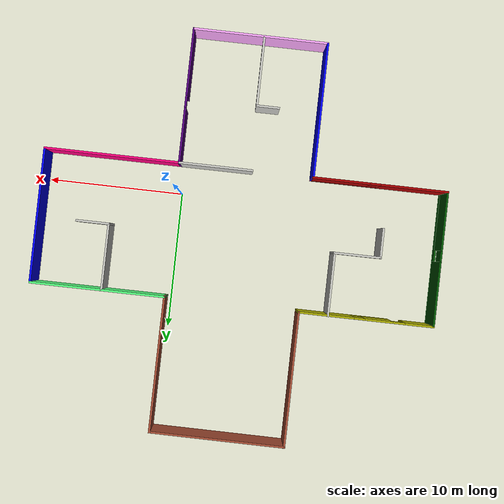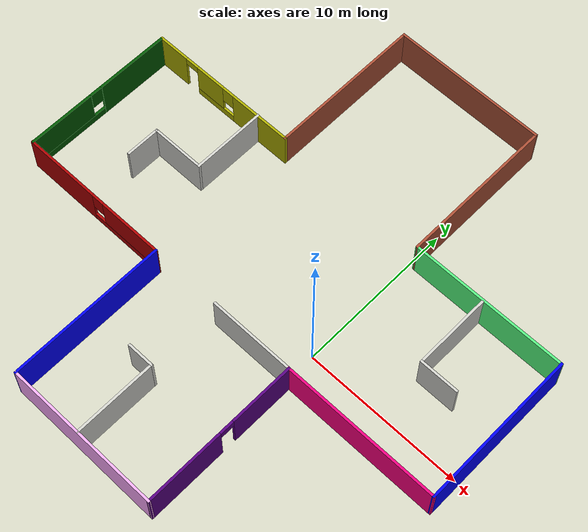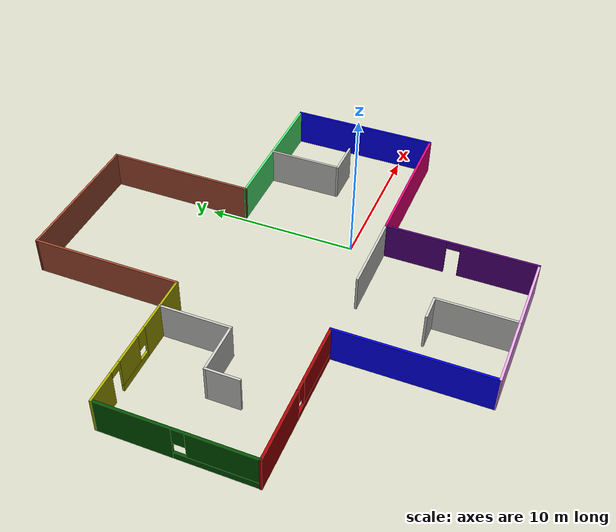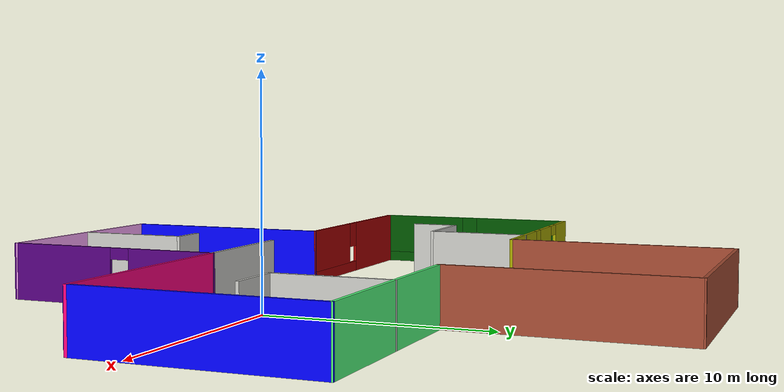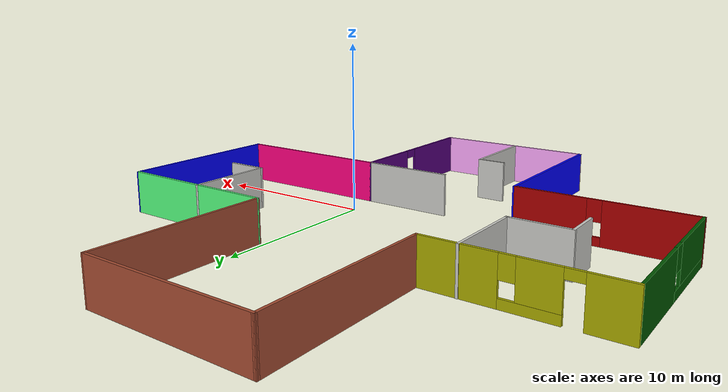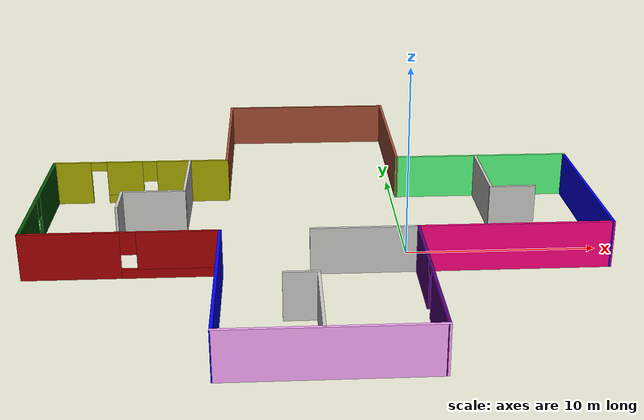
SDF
<?xml version='1.0'?>
<sdf version='1.6'>
  <model name='SumBuilding'>
    <pose frame=''>-4.59412 2.81415 0 0 -0 0</pose>
    <link name='Wall_1'>
      <collision name='Wall_1_Collision'>
        <geometry>
          <box>
            <size>10 0.15 2.5</size>
          </box>
        </geometry>
        <pose frame=''>0 0 1.25 0 -0 0</pose>
      </collision>
      <visual name='Wall_1_Visual'>
        <pose frame=''>0 0 1.25 0 -0 0</pose>
        <geometry>
          <box>
            <size>10 0.15 2.5</size>
          </box>
        </geometry>
        <material>
          <script>
            <uri>file://media/materials/scripts/gazebo.material</uri>
            <name>Gazebo/Bricks</name>
          </script>
          <ambient>0 1 0 1</ambient>
        </material>
        <meta>
          <layer>0</layer>
        </meta>
      </visual>
      <pose frame=''>0.013093 14.7751 0 0 0 -0.003397</pose>
    </link>
    <link name='Wall_11'>
      <pose frame=''>-9.85305 -4.92335 0 0 -0 0</pose>
      <visual name='Wall_11_Visual_0'>
        <pose frame=''>-2.50345 0 1.25 0 -0 0</pose>
        <geometry>
          <box>
            <size>4.99311 0.15 2.5</size>
          </box>
        </geometry>
        <material>
          <script>
            <uri>file://media/materials/scripts/gazebo.material</uri>
            <name>Gazebo/Grey</name>
          </script>
          <ambient>0.666667 0 0 1</ambient>
        </material>
        <meta>
          <layer>0</layer>
        </meta>
      </visual>
      <collision name='Wall_11_Collision_0'>
        <geometry>
          <box>
            <size>4.99311 0.15 2.5</size>
          </box>
        </geometry>
        <pose frame=''>-2.50345 0 1.25 0 -0 0</pose>
      </collision>
      <visual name='Wall_11_Visual_1'>
        <pose frame=''>2.49655 0 0.25 0 -0 0</pose>
        <geometry>
          <box>
            <size>5.00689 0.15 0.5</size>
          </box>
        </geometry>
        <material>
          <script>
            <uri>file://media/materials/scripts/gazebo.material</uri>
            <name>Gazebo/Grey</name>
          </script>
          <ambient>0.666667 0 0 1</ambient>
        </material>
        <meta>
          <layer>0</layer>
        </meta>
      </visual>
      <collision name='Wall_11_Collision_1'>
        <geometry>
          <box>
            <size>5.00689 0.15 0.5</size>
          </box>
        </geometry>
        <pose frame=''>2.49655 0 0.25 0 -0 0</pose>
      </collision>
      <visual name='Wall_11_Visual_2'>
        <pose frame=''>2.89655 0 1.5 0 -0 0</pose>
        <geometry>
          <box>
            <size>4.20689 0.15 2</size>
          </box>
        </geometry>
        <material>
          <script>
            <uri>file://media/materials/scripts/gazebo.material</uri>
            <name>Gazebo/Grey</name>
          </script>
          <ambient>0.666667 0 0 1</ambient>
        </material>
        <meta>
          <layer>0</layer>
        </meta>
      </visual>
      <collision name='Wall_11_Collision_2'>
        <geometry>
          <box>
            <size>4.20689 0.15 2</size>
          </box>
        </geometry>
        <pose frame=''>2.89655 0 1.5 0 -0 0</pose>
      </collision>
      <visual name='Wall_11_Visual_3'>
        <pose frame=''>0.393106 0 1.9 0 -0 0</pose>
        <geometry>
          <box>
            <size>0.8 0.15 1.2</size>
          </box>
        </geometry>
        <material>
          <script>
            <uri>file://media/materials/scripts/gazebo.material</uri>
            <name>Gazebo/Grey</name>
          </script>
          <ambient>0.666667 0 0 1</ambient>
        </material>
        <meta>
          <layer>0</layer>
        </meta>
      </visual>
      <collision name='Wall_11_Collision_3'>
        <geometry>
          <box>
            <size>0.8 0.15 1.2</size>
          </box>
        </geometry>
        <pose frame=''>0.393106 0 1.9 0 -0 0</pose>
      </collision>
    </link>
    <link name='Wall_13'>
      <collision name='Wall_13_Collision'>
        <geometry>
          <box>
            <size>10 0.15 2.5</size>
          </box>
        </geometry>
        <pose frame=''>0 0 1.25 0 -0 0</pose>
      </collision>
      <visual name='Wall_13_Visual'>
        <pose frame=''>0 0 1.25 0 -0 0</pose>
        <geometry>
          <box>
            <size>10 0.15 2.5</size>
          </box>
        </geometry>
        <material>
          <script>
            <uri>file://media/materials/scripts/gazebo.material</uri>
            <name>Gazebo/Grey</name>
          </script>
          <ambient>0 0 1 1</ambient>
        </material>
        <meta>
          <layer>0</layer>
        </meta>
      </visual>
      <pose frame=''>-4.92501 -9.84834 0 0 0 -1.57018</pose>
    </link>
    <link name='Wall_15'>
      <collision name='Wall_15_Collision'>
        <geometry>
          <box>
            <size>10 0.15 2.5</size>
          </box>
        </geometry>
        <pose frame=''>0 0 1.25 0 -0 0</pose>
      </collision>
      <visual name='Wall_15_Visual'>
        <pose frame=''>0 0 1.25 0 -0 0</pose>
        <geometry>
          <box>
            <size>10 0.15 2.5</size>
          </box>
        </geometry>
        <material>
          <script>
            <uri>file://media/materials/scripts/gazebo.material</uri>
            <name>Gazebo/Grey</name>
          </script>
          <ambient>1 0.666667 1 1</ambient>
        </material>
        <meta>
          <layer>0</layer>
        </meta>
      </visual>
      <pose frame=''>0.003026 -14.7827 0 0 0 -0.001891</pose>
    </link>
    <link name='Wall_17'>
      <pose frame=''>4.92801 -9.86697 0 0 -0 1.5708</pose>
      <visual name='Wall_17_Visual_0'>
        <pose frame=''>-2.50628 0 1.25 0 -0 0</pose>
        <geometry>
          <box>
            <size>4.98743 0.15 2.5</size>
          </box>
        </geometry>
        <material>
          <script>
            <uri>file://media/materials/scripts/gazebo.material</uri>
            <name>Gazebo/Grey</name>
          </script>
          <ambient>0.333333 0 0.498039 1</ambient>
        </material>
        <meta>
          <layer>0</layer>
        </meta>
      </visual>
      <collision name='Wall_17_Collision_0'>
        <geometry>
          <box>
            <size>4.98743 0.15 2.5</size>
          </box>
        </geometry>
        <pose frame=''>-2.50628 0 1.25 0 -0 0</pose>
      </collision>
      <visual name='Wall_17_Visual_1'>
        <pose frame=''>2.94372 0 1.25 0 -0 0</pose>
        <geometry>
          <box>
            <size>4.11257 0.15 2.5</size>
          </box>
        </geometry>
        <material>
          <script>
            <uri>file://media/materials/scripts/gazebo.material</uri>
            <name>Gazebo/Grey</name>
          </script>
          <ambient>0.333333 0 0.498039 1</ambient>
        </material>
        <meta>
          <layer>0</layer>
        </meta>
      </visual>
      <collision name='Wall_17_Collision_1'>
        <geometry>
          <box>
            <size>4.11257 0.15 2.5</size>
          </box>
        </geometry>
        <pose frame=''>2.94372 0 1.25 0 -0 0</pose>
      </collision>
      <visual name='Wall_17_Visual_2'>
        <pose frame=''>0.437432 0 2.25 0 -0 0</pose>
        <geometry>
          <box>
            <size>0.9 0.15 0.5</size>
          </box>
        </geometry>
        <material>
          <script>
            <uri>file://media/materials/scripts/gazebo.material</uri>
            <name>Gazebo/Grey</name>
          </script>
          <ambient>0.333333 0 0.498039 1</ambient>
        </material>
        <meta>
          <layer>0</layer>
        </meta>
      </visual>
      <collision name='Wall_17_Collision_2'>
        <geometry>
          <box>
            <size>0.9 0.15 0.5</size>
          </box>
        </geometry>
        <pose frame=''>0.437432 0 2.25 0 -0 0</pose>
      </collision>
    </link>
    <link name='Wall_19'>
      <collision name='Wall_19_Collision'>
        <geometry>
          <box>
            <size>10 0.15 2.5</size>
          </box>
        </geometry>
        <pose frame=''>0 0 1.25 0 -0 0</pose>
      </collision>
      <visual name='Wall_19_Visual'>
        <pose frame=''>0 0 1.25 0 -0 0</pose>
        <geometry>
          <box>
            <size>10 0.15 2.5</size>
          </box>
        </geometry>
        <material>
          <script>
            <uri>file://media/materials/scripts/gazebo.material</uri>
            <name>Gazebo/Grey</name>
          </script>
          <ambient>1 0 0.498039 1</ambient>
        </material>
        <meta>
          <layer>0</layer>
        </meta>
      </visual>
      <pose frame=''>9.85301 -4.94178 0 0 -0 3.8e-05</pose>
    </link>
    <link name='Wall_21'>
      <collision name='Wall_21_Collision'>
        <geometry>
          <box>
            <size>10 0.15 2.5</size>
          </box>
        </geometry>
        <pose frame=''>0 0 1.25 0 -0 0</pose>
      </collision>
      <visual name='Wall_21_Visual'>
        <pose frame=''>0 0 1.25 0 -0 0</pose>
        <geometry>
          <box>
            <size>10 0.15 2.5</size>
          </box>
        </geometry>
        <material>
          <script>
            <uri>file://media/materials/scripts/gazebo.material</uri>
            <name>Gazebo/Grey</name>
          </script>
          <ambient>0 0 1 1</ambient>
        </material>
        <meta>
          <layer>0</layer>
        </meta>
      </visual>
      <pose frame=''>14.7753 -0.016591 0 0 -0 1.57134</pose>
    </link>
    <link name='Wall_23'>
      <collision name='Wall_23_Collision'>
        <geometry>
          <box>
            <size>10 0.15 2.5</size>
          </box>
        </geometry>
        <pose frame=''>0 0 1.25 0 -0 0</pose>
      </collision>
      <visual name='Wall_23_Visual'>
        <pose frame=''>0 0 1.25 0 -0 0</pose>
        <geometry>
          <box>
            <size>10 0.15 2.5</size>
          </box>
        </geometry>
        <material>
          <script>
            <uri>file://media/materials/scripts/gazebo.material</uri>
            <name>Gazebo/Grey</name>
          </script>
          <ambient>0.333333 1 0.498039 1</ambient>
        </material>
        <meta>
          <layer>0</layer>
        </meta>
      </visual>
      <pose frame=''>9.84762 4.90841 0 0 -0 3.14159</pose>
    </link>
    <link name='Wall_27'>
      <collision name='Wall_27_Collision'>
        <geometry>
          <box>
            <size>10 0.15 2.5</size>
          </box>
        </geometry>
        <pose frame=''>0 0 1.25 0 -0 0</pose>
      </collision>
      <visual name='Wall_27_Visual'>
        <pose frame=''>0 0 1.25 0 -0 0</pose>
        <geometry>
          <box>
            <size>10 0.15 2.5</size>
          </box>
        </geometry>
        <material>
          <script>
            <uri>file://media/materials/scripts/gazebo.material</uri>
            <name>Gazebo/Bricks</name>
          </script>
          <ambient>1 1 0 1</ambient>
        </material>
        <meta>
          <layer>0</layer>
        </meta>
      </visual>
      <pose frame=''>4.93035 9.8334 0 0 -0 1.56923</pose>
    </link>
    <link name='Wall_29'>
      <collision name='Wall_29_Collision'>
        <geometry>
          <box>
            <size>5 0.15 2.5</size>
          </box>
        </geometry>
        <pose frame=''>0 0 1.25 0 -0 0</pose>
      </collision>
      <visual name='Wall_29_Visual'>
        <pose frame=''>0 0 1.25 0 -0 0</pose>
        <geometry>
          <box>
            <size>5 0.15 2.5</size>
          </box>
        </geometry>
        <material>
          <script>
            <uri>file://media/materials/scripts/gazebo.material</uri>
            <name>Gazebo/CeilingTiled</name>
          </script>
          <ambient>0.333333 0.333333 1 1</ambient>
        </material>
        <meta>
          <layer>0</layer>
        </meta>
      </visual>
      <pose frame=''>9.53345 2.48414 0 0 0 -1.5708</pose>
    </link>
    <link name='Wall_3'>
      <collision name='Wall_3_Collision'>
        <geometry>
          <box>
            <size>10 0.15 2.5</size>
          </box>
        </geometry>
        <pose frame=''>0 0 1.25 0 -0 0</pose>
      </collision>
      <visual name='Wall_3_Visual'>
        <pose frame=''>0 0 1.25 0 -0 0</pose>
        <geometry>
          <box>
            <size>10 0.15 2.5</size>
          </box>
        </geometry>
        <material>
          <script>
            <uri>file://media/materials/scripts/gazebo.material</uri>
            <name>Gazebo/Bricks</name>
          </script>
          <ambient>0.666667 0.333333 0 1</ambient>
        </material>
        <meta>
          <layer>0</layer>
        </meta>
      </visual>
      <pose frame=''>-4.91188 9.86685 0 0 0 -1.5708</pose>
    </link>
    <link name='Wall_30'>
      <collision name='Wall_30_Collision'>
        <geometry>
          <box>
            <size>2.5 0.15 2.5</size>
          </box>
        </geometry>
        <pose frame=''>0 0 1.25 0 -0 0</pose>
      </collision>
      <visual name='Wall_30_Visual'>
        <pose frame=''>0 0 1.25 0 -0 0</pose>
        <geometry>
          <box>
            <size>2.5 0.15 2.5</size>
          </box>
        </geometry>
        <material>
          <script>
            <uri>file://media/materials/scripts/gazebo.material</uri>
            <name>Gazebo/CeilingTiled</name>
          </script>
          <ambient>0.333333 0.333333 1 1</ambient>
        </material>
        <meta>
          <layer>0</layer>
        </meta>
      </visual>
      <pose frame=''>10.7084 0.059135 0 0 -0 0</pose>
    </link>
    <link name='Wall_32'>
      <collision name='Wall_32_Collision'>
        <geometry>
          <box>
            <size>5.25 0.15 2.5</size>
          </box>
        </geometry>
        <pose frame=''>0 0 1.25 0 -0 0</pose>
      </collision>
      <visual name='Wall_32_Visual'>
        <pose frame=''>0 0 1.25 0 -0 0</pose>
        <geometry>
          <box>
            <size>5.25 0.15 2.5</size>
          </box>
        </geometry>
        <material>
          <script>
            <uri>file://media/materials/scripts/gazebo.material</uri>
            <name>Gazebo/CeilingTiled</name>
          </script>
          <ambient>0.333333 0.666667 1 1</ambient>
        </material>
        <meta>
          <layer>0</layer>
        </meta>
      </visual>
      <pose frame=''>-0.257513 -12.2298 0 0 -0 1.5708</pose>
    </link>
    <link name='Wall_33'>
      <collision name='Wall_33_Collision'>
        <geometry>
          <box>
            <size>1.75 0.15 2.5</size>
          </box>
        </geometry>
        <pose frame=''>0 0 1.25 0 -0 0</pose>
      </collision>
      <visual name='Wall_33_Visual'>
        <pose frame=''>0 0 1.25 0 -0 0</pose>
        <geometry>
          <box>
            <size>1.75 0.15 2.5</size>
          </box>
        </geometry>
        <material>
          <script>
            <uri>file://media/materials/scripts/gazebo.material</uri>
            <name>Gazebo/CeilingTiled</name>
          </script>
          <ambient>0.333333 0 0.498039 1</ambient>
        </material>
        <meta>
          <layer>0</layer>
        </meta>
      </visual>
      <pose frame=''>-1.05751 -9.67979 0 0 -0 3.14159</pose>
    </link>
    <link name='Wall_35'>
      <collision name='Wall_35_Collision'>
        <geometry>
          <box>
            <size>5.5 0.15 2.5</size>
          </box>
        </geometry>
        <pose frame=''>0 0 1.25 0 -0 0</pose>
      </collision>
      <visual name='Wall_35_Visual'>
        <pose frame=''>0 0 1.25 0 -0 0</pose>
        <geometry>
          <box>
            <size>5.5 0.15 2.5</size>
          </box>
        </geometry>
        <material>
          <script>
            <uri>file://media/materials/scripts/gazebo.material</uri>
            <name>Gazebo/CeilingTiled</name>
          </script>
          <ambient>1 0.666667 0 1</ambient>
        </material>
        <meta>
          <layer>0</layer>
        </meta>
      </visual>
      <pose frame=''>2.25301 -4.94197 0 0 -0 3.14159</pose>
    </link>
    <link name='Wall_37'>
      <collision name='Wall_37_Collision'>
        <geometry>
          <box>
            <size>4.75 0.15 2.5</size>
          </box>
        </geometry>
        <pose frame=''>0 0 1.25 0 -0 0</pose>
      </collision>
      <visual name='Wall_37_Visual'>
        <pose frame=''>0 0 1.25 0 -0 0</pose>
        <geometry>
          <box>
            <size>4.75 0.15 2.5</size>
          </box>
        </geometry>
        <material>
          <script>
            <uri>file://media/materials/scripts/gazebo.material</uri>
            <name>Gazebo/CeilingTiled</name>
          </script>
          <ambient>0.666667 0 1 1</ambient>
        </material>
        <meta>
          <layer>0</layer>
        </meta>
      </visual>
      <pose frame=''>-7.05233 2.66264 0 0 0 -1.5708</pose>
    </link>
    <link name='Wall_38'>
      <collision name='Wall_38_Collision'>
        <geometry>
          <box>
            <size>3.5 0.15 2.5</size>
          </box>
        </geometry>
        <pose frame=''>0 0 1.25 0 -0 0</pose>
      </collision>
      <visual name='Wall_38_Visual'>
        <pose frame=''>0 0 1.25 0 -0 0</pose>
        <geometry>
          <box>
            <size>3.5 0.15 2.5</size>
          </box>
        </geometry>
        <material>
          <script>
            <uri>file://media/materials/scripts/gazebo.material</uri>
            <name>Gazebo/CeilingTiled</name>
          </script>
          <ambient>0.666667 0 1 1</ambient>
        </material>
        <meta>
          <layer>0</layer>
        </meta>
      </visual>
      <pose frame=''>-8.72733 0.362638 0 0 -0 3.14159</pose>
    </link>
    <link name='Wall_39'>
      <collision name='Wall_39_Collision'>
        <geometry>
          <box>
            <size>2.25 0.15 2.5</size>
          </box>
        </geometry>
        <pose frame=''>0 0 1.25 0 -0 0</pose>
      </collision>
      <visual name='Wall_39_Visual'>
        <pose frame=''>0 0 1.25 0 -0 0</pose>
        <geometry>
          <box>
            <size>2.25 0.15 2.5</size>
          </box>
        </geometry>
        <material>
          <script>
            <uri>file://media/materials/scripts/gazebo.material</uri>
            <name>Gazebo/CeilingTiled</name>
          </script>
          <ambient>0.666667 0 1 1</ambient>
        </material>
        <meta>
          <layer>0</layer>
        </meta>
      </visual>
      <pose frame=''>-10.4023 -0.687362 0 0 0 -1.5708</pose>
    </link>
    <link name='Wall_7'>
      <pose frame=''>-9.83688 4.94185 0 0 -0 3.14159</pose>
      <visual name='Wall_7_Visual_0'>
        <pose frame=''>-2.94197 0 1.25 0 -0 0</pose>
        <geometry>
          <box>
            <size>4.11606 0.15 2.5</size>
          </box>
        </geometry>
        <material>
          <script>
            <uri>file://media/materials/scripts/gazebo.material</uri>
            <name>Gazebo/Grey</name>
          </script>
          <ambient>0.666667 0.666667 0 1</ambient>
        </material>
        <meta>
          <layer>0</layer>
        </meta>
      </visual>
      <collision name='Wall_7_Collision_0'>
        <geometry>
          <box>
            <size>4.11606 0.15 2.5</size>
          </box>
        </geometry>
        <pose frame=''>-2.94197 0 1.25 0 -0 0</pose>
      </collision>
      <visual name='Wall_7_Visual_1'>
        <pose frame=''>3.9276 0 1.25 0 -0 0</pose>
        <geometry>
          <box>
            <size>2.14481 0.15 2.5</size>
          </box>
        </geometry>
        <material>
          <script>
            <uri>file://media/materials/scripts/gazebo.material</uri>
            <name>Gazebo/Grey</name>
          </script>
          <ambient>0.666667 0.666667 0 1</ambient>
        </material>
        <meta>
          <layer>0</layer>
        </meta>
      </visual>
      <collision name='Wall_7_Collision_1'>
        <geometry>
          <box>
            <size>2.14481 0.15 2.5</size>
          </box>
        </geometry>
        <pose frame=''>3.9276 0 1.25 0 -0 0</pose>
      </collision>
      <visual name='Wall_7_Visual_2'>
        <pose frame=''>0.535626 0 0.25 0 -0 0</pose>
        <geometry>
          <box>
            <size>2.83914 0.15 0.5</size>
          </box>
        </geometry>
        <material>
          <script>
            <uri>file://media/materials/scripts/gazebo.material</uri>
            <name>Gazebo/Grey</name>
          </script>
          <ambient>0.666667 0.666667 0 1</ambient>
        </material>
        <meta>
          <layer>0</layer>
        </meta>
      </visual>
      <collision name='Wall_7_Collision_2'>
        <geometry>
          <box>
            <size>2.83914 0.15 0.5</size>
          </box>
        </geometry>
        <pose frame=''>0.535626 0 0.25 0 -0 0</pose>
      </collision>
      <visual name='Wall_7_Visual_3'>
        <pose frame=''>0.935626 0 1.5 0 -0 0</pose>
        <geometry>
          <box>
            <size>2.03913 0.15 2</size>
          </box>
        </geometry>
        <material>
          <script>
            <uri>file://media/materials/scripts/gazebo.material</uri>
            <name>Gazebo/Grey</name>
          </script>
          <ambient>0.666667 0.666667 0 1</ambient>
        </material>
        <meta>
          <layer>0</layer>
        </meta>
      </visual>
      <collision name='Wall_7_Collision_3'>
        <geometry>
          <box>
            <size>2.03913 0.15 2</size>
          </box>
        </geometry>
        <pose frame=''>0.935626 0 1.5 0 -0 0</pose>
      </collision>
      <visual name='Wall_7_Visual_4'>
        <pose frame=''>-0.483942 0 1.9 0 -0 0</pose>
        <geometry>
          <box>
            <size>0.8 0.15 1.2</size>
          </box>
        </geometry>
        <material>
          <script>
            <uri>file://media/materials/scripts/gazebo.material</uri>
            <name>Gazebo/Grey</name>
          </script>
          <ambient>0.666667 0.666667 0 1</ambient>
        </material>
        <meta>
          <layer>0</layer>
        </meta>
      </visual>
      <collision name='Wall_7_Collision_4'>
        <geometry>
          <box>
            <size>0.8 0.15 1.2</size>
          </box>
        </geometry>
        <pose frame=''>-0.483942 0 1.9 0 -0 0</pose>
      </collision>
      <visual name='Wall_7_Visual_5'>
        <pose frame=''>2.40519 0 2.25 0 -0 0</pose>
        <geometry>
          <box>
            <size>0.9 0.15 0.5</size>
          </box>
        </geometry>
        <material>
          <script>
            <uri>file://media/materials/scripts/gazebo.material</uri>
            <name>Gazebo/Grey</name>
          </script>
          <ambient>0.666667 0.666667 0 1</ambient>
        </material>
        <meta>
          <layer>0</layer>
        </meta>
      </visual>
      <collision name='Wall_7_Collision_5'>
        <geometry>
          <box>
            <size>0.9 0.15 0.5</size>
          </box>
        </geometry>
        <pose frame=''>2.40519 0 2.25 0 -0 0</pose>
      </collision>
    </link>
    <link name='Wall_9'>
      <pose frame=''>-14.7619 0.016854 0 0 0 -1.5708</pose>
      <visual name='Wall_9_Visual_0'>
        <pose frame=''>-2.57802 0 1.25 0 -0 0</pose>
        <geometry>
          <box>
            <size>4.84396 0.15 2.5</size>
          </box>
        </geometry>
        <material>
          <script>
            <uri>file://media/materials/scripts/gazebo.material</uri>
            <name>Gazebo/Grey</name>
          </script>
          <ambient>0 0.333333 0 1</ambient>
        </material>
        <meta>
          <layer>0</layer>
        </meta>
      </visual>
      <collision name='Wall_9_Collision_0'>
        <geometry>
          <box>
            <size>4.84396 0.15 2.5</size>
          </box>
        </geometry>
        <pose frame=''>-2.57802 0 1.25 0 -0 0</pose>
      </collision>
      <visual name='Wall_9_Visual_1'>
        <pose frame=''>2.42198 0 0.25 0 -0 0</pose>
        <geometry>
          <box>
            <size>5.15604 0.15 0.5</size>
          </box>
        </geometry>
        <material>
          <script>
            <uri>file://media/materials/scripts/gazebo.material</uri>
            <name>Gazebo/Grey</name>
          </script>
          <ambient>0 0.333333 0 1</ambient>
        </material>
        <meta>
          <layer>0</layer>
        </meta>
      </visual>
      <collision name='Wall_9_Collision_1'>
        <geometry>
          <box>
            <size>5.15604 0.15 0.5</size>
          </box>
        </geometry>
        <pose frame=''>2.42198 0 0.25 0 -0 0</pose>
      </collision>
      <visual name='Wall_9_Visual_2'>
        <pose frame=''>2.82198 0 1.5 0 -0 0</pose>
        <geometry>
          <box>
            <size>4.35604 0.15 2</size>
          </box>
        </geometry>
        <material>
          <script>
            <uri>file://media/materials/scripts/gazebo.material</uri>
            <name>Gazebo/Grey</name>
          </script>
          <ambient>0 0.333333 0 1</ambient>
        </material>
        <meta>
          <layer>0</layer>
        </meta>
      </visual>
      <collision name='Wall_9_Collision_2'>
        <geometry>
          <box>
            <size>4.35604 0.15 2</size>
          </box>
        </geometry>
        <pose frame=''>2.82198 0 1.5 0 -0 0</pose>
      </collision>
      <visual name='Wall_9_Visual_3'>
        <pose frame=''>0.243959 0 1.9 0 -0 0</pose>
        <geometry>
          <box>
            <size>0.8 0.15 1.2</size>
          </box>
        </geometry>
        <material>
          <script>
            <uri>file://media/materials/scripts/gazebo.material</uri>
            <name>Gazebo/Grey</name>
          </script>
          <ambient>0 0.333333 0 1</ambient>
        </material>
        <meta>
          <layer>0</layer>
        </meta>
      </visual>
      <collision name='Wall_9_Collision_3'>
        <geometry>
          <box>
            <size>0.8 0.15 1.2</size>
          </box>
        </geometry>
        <pose frame=''>0.243959 0 1.9 0 -0 0</pose>
      </collision>
    </link>
    <static>1</static>
  </model>
</sdf>
